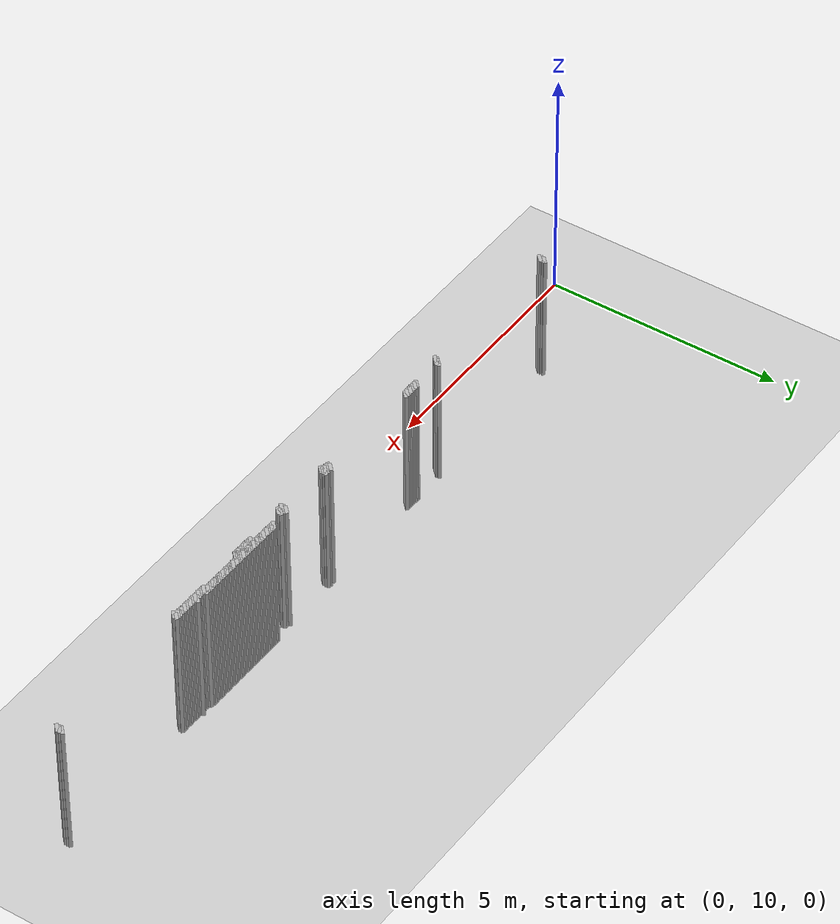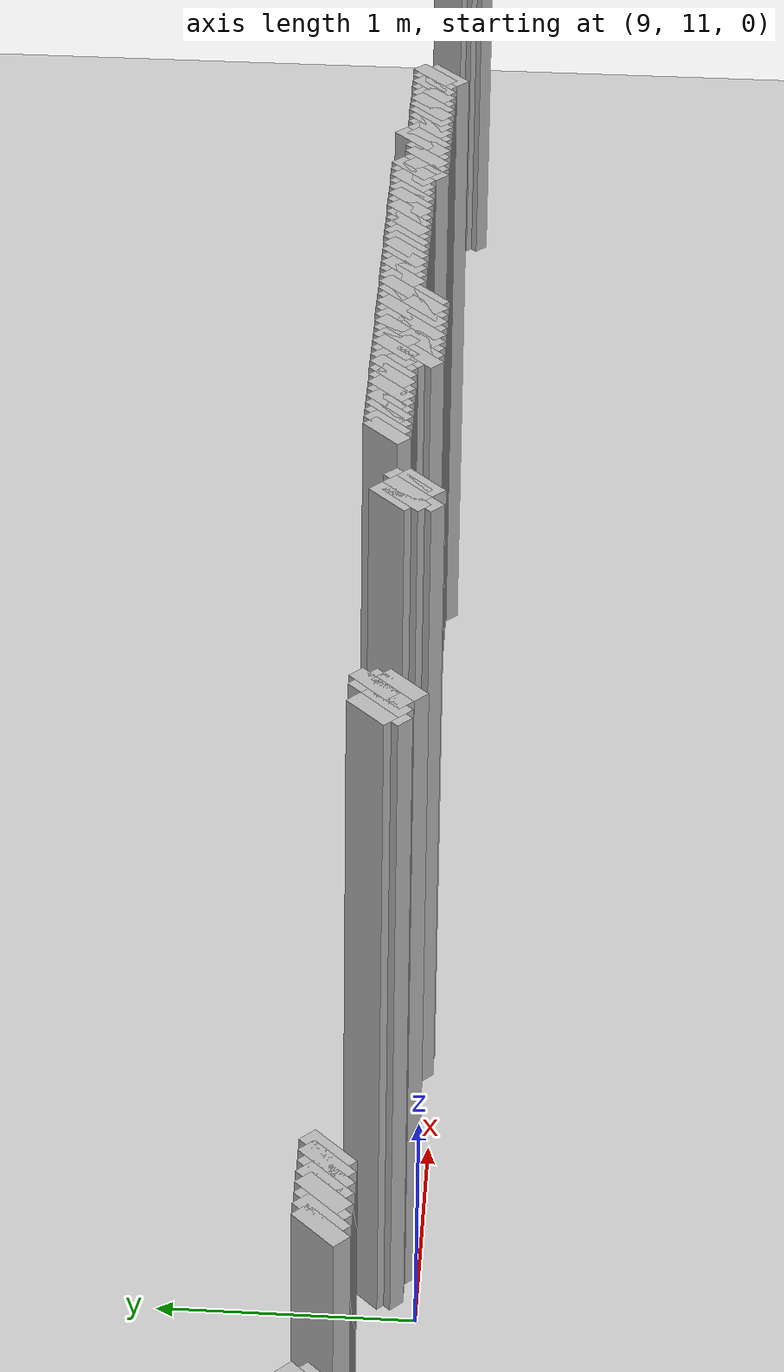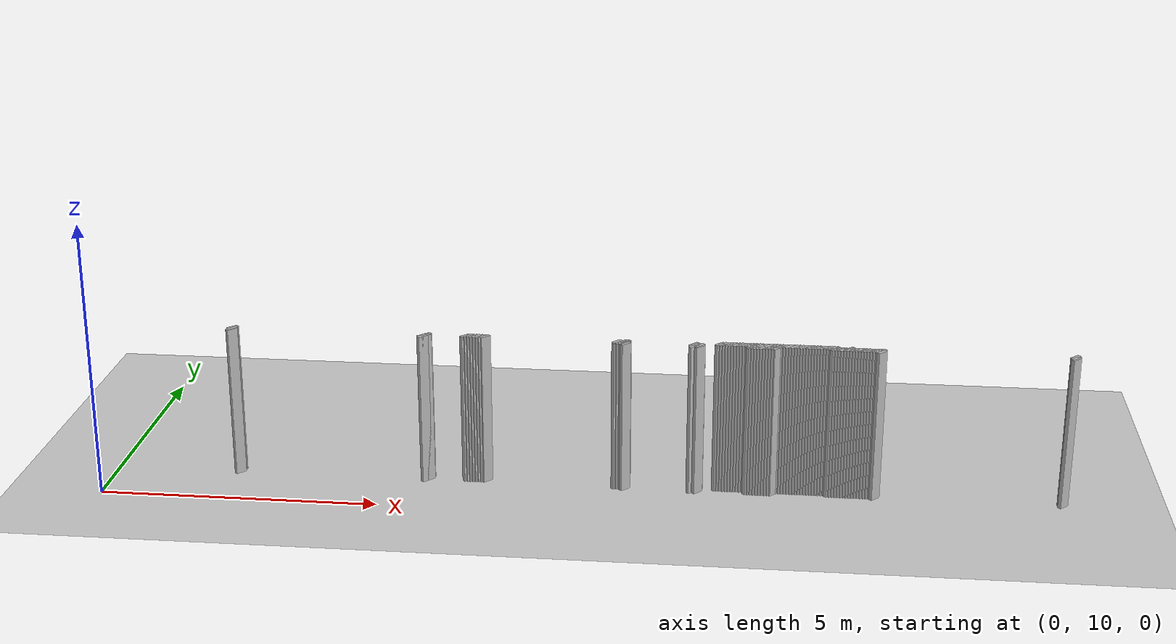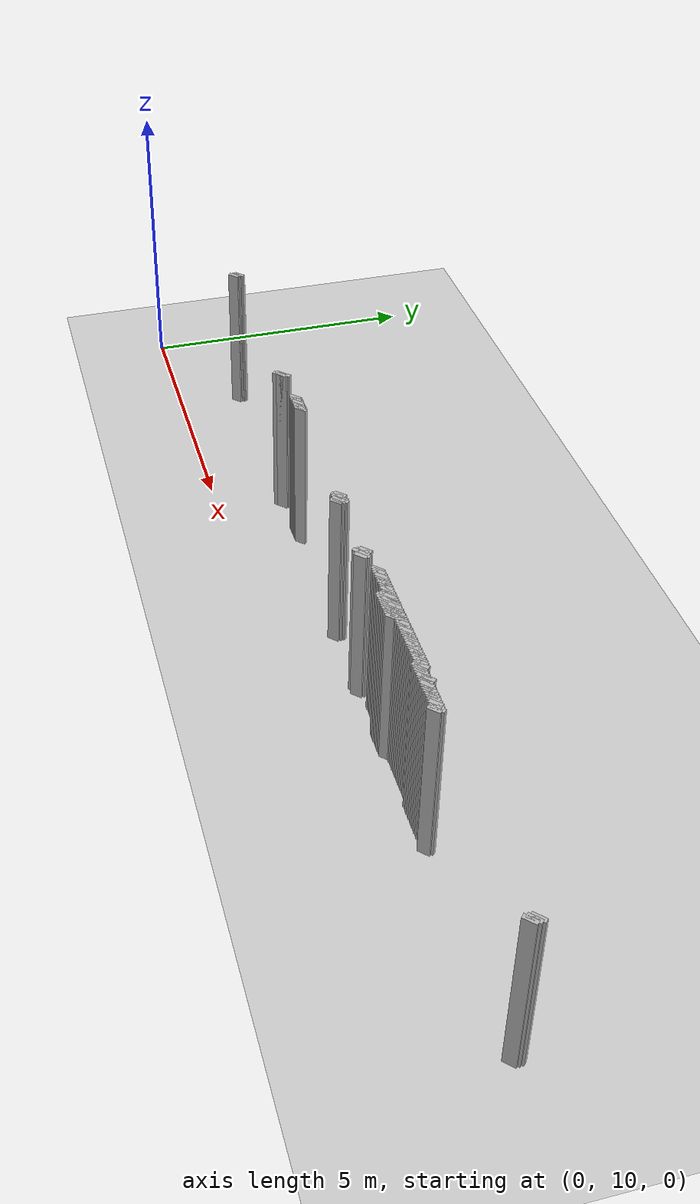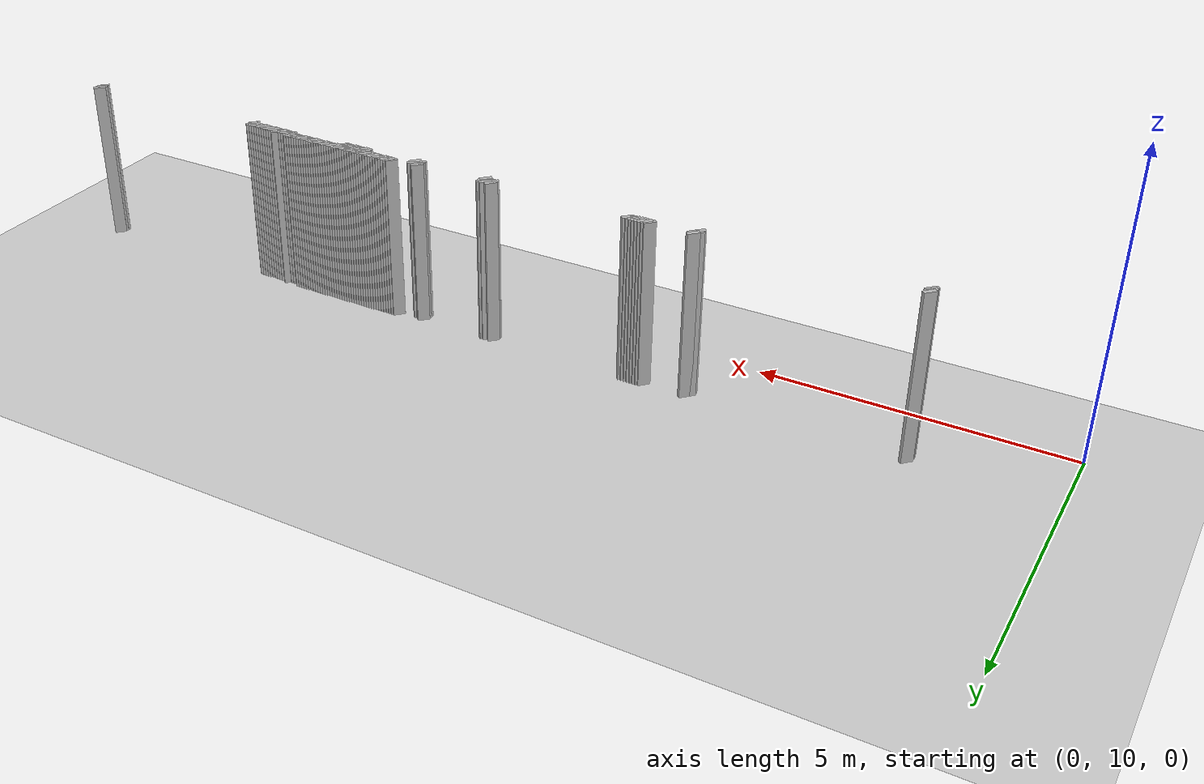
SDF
<sdf version="1.5">
 <world name="default">
  <include><uri>model://ground_plane</uri></include>
  <include><uri>model://sun</uri></include>
  <model name="grey_wall_1269">
   <static>1</static>
   <link name="link">
    <pose>10.950000000000001 11.25  1.4 0 0 -0.7853981633974483</pose>
    <collision name="collision">
     <geometry><box><size>0.07071067811865576 .2  2.8</size></box></geometry>
    </collision>
    <visual name="visual">
     <cast_shadows>0</cast_shadows>
     <geometry><box><size>0.07071067811865576 .2  2.8</size></box></geometry>
    </visual>
   </link>
  </model>
  <model name="grey_wall_1270">
   <static>1</static>
   <link name="link">
    <pose>11.0 11.25  1.4 0 0 -0.7853981633974483</pose>
    <collision name="collision">
     <geometry><box><size>0.07071067811865576 .2  2.8</size></box></geometry>
    </collision>
    <visual name="visual">
     <cast_shadows>0</cast_shadows>
     <geometry><box><size>0.07071067811865576 .2  2.8</size></box></geometry>
    </visual>
   </link>
  </model>
  <model name="grey_wall_1271">
   <static>1</static>
   <link name="link">
    <pose>11.05 11.25  1.4 0 0 -0.7853981633974483</pose>
    <collision name="collision">
     <geometry><box><size>0.07071067811865576 .2  2.8</size></box></geometry>
    </collision>
    <visual name="visual">
     <cast_shadows>0</cast_shadows>
     <geometry><box><size>0.07071067811865576 .2  2.8</size></box></geometry>
    </visual>
   </link>
  </model>
  <model name="grey_wall_1272">
   <static>1</static>
   <link name="link">
    <pose>11.100000000000001 11.25  1.4 0 0 -0.7853981633974483</pose>
    <collision name="collision">
     <geometry><box><size>0.07071067811865576 .2  2.8</size></box></geometry>
    </collision>
    <visual name="visual">
     <cast_shadows>0</cast_shadows>
     <geometry><box><size>0.07071067811865576 .2  2.8</size></box></geometry>
    </visual>
   </link>
  </model>
  <model name="grey_wall_1273">
   <static>1</static>
   <link name="link">
    <pose>11.15 11.25  1.4 0 0 -0.7853981633974483</pose>
    <collision name="collision">
     <geometry><box><size>0.07071067811865576 .2  2.8</size></box></geometry>
    </collision>
    <visual name="visual">
     <cast_shadows>0</cast_shadows>
     <geometry><box><size>0.07071067811865576 .2  2.8</size></box></geometry>
    </visual>
   </link>
  </model>
  <model name="grey_wall_1274">
   <static>1</static>
   <link name="link">
    <pose>11.200000000000001 11.25  1.4 0 0 -0.7853981633974483</pose>
    <collision name="collision">
     <geometry><box><size>0.07071067811865576 .2  2.8</size></box></geometry>
    </collision>
    <visual name="visual">
     <cast_shadows>0</cast_shadows>
     <geometry><box><size>0.07071067811865576 .2  2.8</size></box></geometry>
    </visual>
   </link>
  </model>
  <model name="grey_wall_1275">
   <static>1</static>
   <link name="link">
    <pose>11.25 11.25  1.4 0 0 -0.7853981633974483</pose>
    <collision name="collision">
     <geometry><box><size>0.07071067811865576 .2  2.8</size></box></geometry>
    </collision>
    <visual name="visual">
     <cast_shadows>0</cast_shadows>
     <geometry><box><size>0.07071067811865576 .2  2.8</size></box></geometry>
    </visual>
   </link>
  </model>
  <model name="grey_wall_1276">
   <static>1</static>
   <link name="link">
    <pose>11.3 11.25  1.4 0 0 -0.7853981633974483</pose>
    <collision name="collision">
     <geometry><box><size>0.07071067811865576 .2  2.8</size></box></geometry>
    </collision>
    <visual name="visual">
     <cast_shadows>0</cast_shadows>
     <geometry><box><size>0.07071067811865576 .2  2.8</size></box></geometry>
    </visual>
   </link>
  </model>
  <model name="grey_wall_1277">
   <static>1</static>
   <link name="link">
    <pose>11.350000000000001 11.25  1.4 0 0 -0.7853981633974483</pose>
    <collision name="collision">
     <geometry><box><size>0.07071067811865576 .2  2.8</size></box></geometry>
    </collision>
    <visual name="visual">
     <cast_shadows>0</cast_shadows>
     <geometry><box><size>0.07071067811865576 .2  2.8</size></box></geometry>
    </visual>
   </link>
  </model>
  <model name="grey_wall_1278">
   <static>1</static>
   <link name="link">
    <pose>11.4 11.25  1.4 0 0 -0.7853981633974483</pose>
    <collision name="collision">
     <geometry><box><size>0.07071067811865576 .2  2.8</size></box></geometry>
    </collision>
    <visual name="visual">
     <cast_shadows>0</cast_shadows>
     <geometry><box><size>0.07071067811865576 .2  2.8</size></box></geometry>
    </visual>
   </link>
  </model>
  <model name="grey_wall_1279">
   <static>1</static>
   <link name="link">
    <pose>11.450000000000001 11.25  1.4 0 0 -0.7853981633974483</pose>
    <collision name="collision">
     <geometry><box><size>0.07071067811865576 .2  2.8</size></box></geometry>
    </collision>
    <visual name="visual">
     <cast_shadows>0</cast_shadows>
     <geometry><box><size>0.07071067811865576 .2  2.8</size></box></geometry>
    </visual>
   </link>
  </model>
  <model name="grey_wall_1280">
   <static>1</static>
   <link name="link">
    <pose>11.5 11.25  1.4 0 0 -0.7853981633974483</pose>
    <collision name="collision">
     <geometry><box><size>0.07071067811865576 .2  2.8</size></box></geometry>
    </collision>
    <visual name="visual">
     <cast_shadows>0</cast_shadows>
     <geometry><box><size>0.07071067811865576 .2  2.8</size></box></geometry>
    </visual>
   </link>
  </model>
  <model name="grey_wall_1281">
   <static>1</static>
   <link name="link">
    <pose>11.55 11.25  1.4 0 0 -0.7853981633974483</pose>
    <collision name="collision">
     <geometry><box><size>0.07071067811865576 .2  2.8</size></box></geometry>
    </collision>
    <visual name="visual">
     <cast_shadows>0</cast_shadows>
     <geometry><box><size>0.07071067811865576 .2  2.8</size></box></geometry>
    </visual>
   </link>
  </model>
  <model name="grey_wall_1282">
   <static>1</static>
   <link name="link">
    <pose>11.600000000000001 11.25  1.4 0 0 -0.7853981633974483</pose>
    <collision name="collision">
     <geometry><box><size>0.07071067811865576 .2  2.8</size></box></geometry>
    </collision>
    <visual name="visual">
     <cast_shadows>0</cast_shadows>
     <geometry><box><size>0.07071067811865576 .2  2.8</size></box></geometry>
    </visual>
   </link>
  </model>
  <model name="grey_wall_1283">
   <static>1</static>
   <link name="link">
    <pose>11.65 11.25  1.4 0 0 -0.7853981633974483</pose>
    <collision name="collision">
     <geometry><box><size>0.07071067811865576 .2  2.8</size></box></geometry>
    </collision>
    <visual name="visual">
     <cast_shadows>0</cast_shadows>
     <geometry><box><size>0.07071067811865576 .2  2.8</size></box></geometry>
    </visual>
   </link>
  </model>
  <model name="grey_wall_1284">
   <static>1</static>
   <link name="link">
    <pose>11.700000000000001 11.25  1.4 0 0 -0.7853981633974483</pose>
    <collision name="collision">
     <geometry><box><size>0.07071067811865576 .2  2.8</size></box></geometry>
    </collision>
    <visual name="visual">
     <cast_shadows>0</cast_shadows>
     <geometry><box><size>0.07071067811865576 .2  2.8</size></box></geometry>
    </visual>
   </link>
  </model>
  <model name="grey_wall_1285">
   <static>1</static>
   <link name="link">
    <pose>11.75 11.25  1.4 0 0 -0.7853981633974483</pose>
    <collision name="collision">
     <geometry><box><size>0.07071067811865576 .2  2.8</size></box></geometry>
    </collision>
    <visual name="visual">
     <cast_shadows>0</cast_shadows>
     <geometry><box><size>0.07071067811865576 .2  2.8</size></box></geometry>
    </visual>
   </link>
  </model>
  <model name="grey_wall_1286">
   <static>1</static>
   <link name="link">
    <pose>11.8 11.25  1.4 0 0 -0.7853981633974483</pose>
    <collision name="collision">
     <geometry><box><size>0.07071067811865576 .2  2.8</size></box></geometry>
    </collision>
    <visual name="visual">
     <cast_shadows>0</cast_shadows>
     <geometry><box><size>0.07071067811865576 .2  2.8</size></box></geometry>
    </visual>
   </link>
  </model>
  <model name="grey_wall_1287">
   <static>1</static>
   <link name="link">
    <pose>11.850000000000001 11.25  1.4 0 0 -0.7853981633974483</pose>
    <collision name="collision">
     <geometry><box><size>0.07071067811865576 .2  2.8</size></box></geometry>
    </collision>
    <visual name="visual">
     <cast_shadows>0</cast_shadows>
     <geometry><box><size>0.07071067811865576 .2  2.8</size></box></geometry>
    </visual>
   </link>
  </model>
  <model name="grey_wall_1288">
   <static>1</static>
   <link name="link">
    <pose>11.9 11.25  1.4 0 0 -0.7853981633974483</pose>
    <collision name="collision">
     <geometry><box><size>0.07071067811865576 .2  2.8</size></box></geometry>
    </collision>
    <visual name="visual">
     <cast_shadows>0</cast_shadows>
     <geometry><box><size>0.07071067811865576 .2  2.8</size></box></geometry>
    </visual>
   </link>
  </model>
  <model name="grey_wall_1289">
   <static>1</static>
   <link name="link">
    <pose>11.950000000000001 11.25  1.4 0 0 -0.7853981633974483</pose>
    <collision name="collision">
     <geometry><box><size>0.07071067811865576 .2  2.8</size></box></geometry>
    </collision>
    <visual name="visual">
     <cast_shadows>0</cast_shadows>
     <geometry><box><size>0.07071067811865576 .2  2.8</size></box></geometry>
    </visual>
   </link>
  </model>
  <model name="grey_wall_1290">
   <static>1</static>
   <link name="link">
    <pose>12.0 11.25  1.4 0 0 -0.7853981633974483</pose>
    <collision name="collision">
     <geometry><box><size>0.07071067811865576 .2  2.8</size></box></geometry>
    </collision>
    <visual name="visual">
     <cast_shadows>0</cast_shadows>
     <geometry><box><size>0.07071067811865576 .2  2.8</size></box></geometry>
    </visual>
   </link>
  </model>
  <model name="grey_wall_1291">
   <static>1</static>
   <link name="link">
    <pose>12.05 11.25  1.4 0 0 -0.7853981633974483</pose>
    <collision name="collision">
     <geometry><box><size>0.07071067811865576 .2  2.8</size></box></geometry>
    </collision>
    <visual name="visual">
     <cast_shadows>0</cast_shadows>
     <geometry><box><size>0.07071067811865576 .2  2.8</size></box></geometry>
    </visual>
   </link>
  </model>
  <model name="grey_wall_1292">
   <static>1</static>
   <link name="link">
    <pose>12.100000000000001 11.25  1.4 0 0 -0.7853981633974483</pose>
    <collision name="collision">
     <geometry><box><size>0.07071067811865576 .2  2.8</size></box></geometry>
    </collision>
    <visual name="visual">
     <cast_shadows>0</cast_shadows>
     <geometry><box><size>0.07071067811865576 .2  2.8</size></box></geometry>
    </visual>
   </link>
  </model>
  <model name="grey_wall_1293">
   <static>1</static>
   <link name="link">
    <pose>12.15 11.25  1.4 0 0 -0.7853981633974483</pose>
    <collision name="collision">
     <geometry><box><size>0.07071067811865576 .2  2.8</size></box></geometry>
    </collision>
    <visual name="visual">
     <cast_shadows>0</cast_shadows>
     <geometry><box><size>0.07071067811865576 .2  2.8</size></box></geometry>
    </visual>
   </link>
  </model>
  <model name="grey_wall_1294">
   <static>1</static>
   <link name="link">
    <pose>12.200000000000001 11.25  1.4 0 0 -0.7853981633974483</pose>
    <collision name="collision">
     <geometry><box><size>0.07071067811865576 .2  2.8</size></box></geometry>
    </collision>
    <visual name="visual">
     <cast_shadows>0</cast_shadows>
     <geometry><box><size>0.07071067811865576 .2  2.8</size></box></geometry>
    </visual>
   </link>
  </model>
  <model name="grey_wall_1295">
   <static>1</static>
   <link name="link">
    <pose>12.25 11.25  1.4 0 0 -0.7853981633974483</pose>
    <collision name="collision">
     <geometry><box><size>0.07071067811865576 .2  2.8</size></box></geometry>
    </collision>
    <visual name="visual">
     <cast_shadows>0</cast_shadows>
     <geometry><box><size>0.07071067811865576 .2  2.8</size></box></geometry>
    </visual>
   </link>
  </model>
  <model name="grey_wall_1296">
   <static>1</static>
   <link name="link">
    <pose>12.3 11.25  1.4 0 0 -0.7853981633974483</pose>
    <collision name="collision">
     <geometry><box><size>0.07071067811865576 .2  2.8</size></box></geometry>
    </collision>
    <visual name="visual">
     <cast_shadows>0</cast_shadows>
     <geometry><box><size>0.07071067811865576 .2  2.8</size></box></geometry>
    </visual>
   </link>
  </model>
  <model name="grey_wall_1297">
   <static>1</static>
   <link name="link">
    <pose>12.350000000000001 11.25  1.4 0 0 -0.7853981633974483</pose>
    <collision name="collision">
     <geometry><box><size>0.07071067811865576 .2  2.8</size></box></geometry>
    </collision>
    <visual name="visual">
     <cast_shadows>0</cast_shadows>
     <geometry><box><size>0.07071067811865576 .2  2.8</size></box></geometry>
    </visual>
   </link>
  </model>
  <model name="grey_wall_1298">
   <static>1</static>
   <link name="link">
    <pose>12.4 11.25  1.4 0 0 -0.7853981633974483</pose>
    <collision name="collision">
     <geometry><box><size>0.07071067811865576 .2  2.8</size></box></geometry>
    </collision>
    <visual name="visual">
     <cast_shadows>0</cast_shadows>
     <geometry><box><size>0.07071067811865576 .2  2.8</size></box></geometry>
    </visual>
   </link>
  </model>
  <model name="grey_wall_1299">
   <static>1</static>
   <link name="link">
    <pose>12.450000000000001 11.25  1.4 0 0 -0.7853981633974483</pose>
    <collision name="collision">
     <geometry><box><size>0.07071067811865576 .2  2.8</size></box></geometry>
    </collision>
    <visual name="visual">
     <cast_shadows>0</cast_shadows>
     <geometry><box><size>0.07071067811865576 .2  2.8</size></box></geometry>
    </visual>
   </link>
  </model>
  <model name="grey_wall_1300">
   <static>1</static>
   <link name="link">
    <pose>12.5 11.25  1.4 0 0 -0.7853981633974483</pose>
    <collision name="collision">
     <geometry><box><size>0.07071067811865576 .2  2.8</size></box></geometry>
    </collision>
    <visual name="visual">
     <cast_shadows>0</cast_shadows>
     <geometry><box><size>0.07071067811865576 .2  2.8</size></box></geometry>
    </visual>
   </link>
  </model>
  <model name="grey_wall_1301">
   <static>1</static>
   <link name="link">
    <pose>12.55 11.25  1.4 0 0 -0.7853981633974483</pose>
    <collision name="collision">
     <geometry><box><size>0.07071067811865576 .2  2.8</size></box></geometry>
    </collision>
    <visual name="visual">
     <cast_shadows>0</cast_shadows>
     <geometry><box><size>0.07071067811865576 .2  2.8</size></box></geometry>
    </visual>
   </link>
  </model>
  <model name="grey_wall_1302">
   <static>1</static>
   <link name="link">
    <pose>12.600000000000001 11.25  1.4 0 0 -0.7853981633974483</pose>
    <collision name="collision">
     <geometry><box><size>0.07071067811865576 .2  2.8</size></box></geometry>
    </collision>
    <visual name="visual">
     <cast_shadows>0</cast_shadows>
     <geometry><box><size>0.07071067811865576 .2  2.8</size></box></geometry>
    </visual>
   </link>
  </model>
  <model name="grey_wall_1303">
   <static>1</static>
   <link name="link">
    <pose>12.65 11.25  1.4 0 0 -0.7853981633974483</pose>
    <collision name="collision">
     <geometry><box><size>0.07071067811865576 .2  2.8</size></box></geometry>
    </collision>
    <visual name="visual">
     <cast_shadows>0</cast_shadows>
     <geometry><box><size>0.07071067811865576 .2  2.8</size></box></geometry>
    </visual>
   </link>
  </model>
  <model name="grey_wall_1304">
   <static>1</static>
   <link name="link">
    <pose>12.700000000000001 11.25  1.4 0 0 -0.7853981633974483</pose>
    <collision name="collision">
     <geometry><box><size>0.07071067811865576 .2  2.8</size></box></geometry>
    </collision>
    <visual name="visual">
     <cast_shadows>0</cast_shadows>
     <geometry><box><size>0.07071067811865576 .2  2.8</size></box></geometry>
    </visual>
   </link>
  </model>
  <model name="grey_wall_1305">
   <static>1</static>
   <link name="link">
    <pose>12.75 11.25  1.4 0 0 -0.7853981633974483</pose>
    <collision name="collision">
     <geometry><box><size>0.07071067811865576 .2  2.8</size></box></geometry>
    </collision>
    <visual name="visual">
     <cast_shadows>0</cast_shadows>
     <geometry><box><size>0.07071067811865576 .2  2.8</size></box></geometry>
    </visual>
   </link>
  </model>
  <model name="grey_wall_1306">
   <static>1</static>
   <link name="link">
    <pose>12.8 11.25  1.4 0 0 -0.7853981633974483</pose>
    <collision name="collision">
     <geometry><box><size>0.07071067811865576 .2  2.8</size></box></geometry>
    </collision>
    <visual name="visual">
     <cast_shadows>0</cast_shadows>
     <geometry><box><size>0.07071067811865576 .2  2.8</size></box></geometry>
    </visual>
   </link>
  </model>
  <model name="grey_wall_1307">
   <static>1</static>
   <link name="link">
    <pose>12.850000000000001 11.25  1.4 0 0 -0.7853981633974483</pose>
    <collision name="collision">
     <geometry><box><size>0.07071067811865576 .2  2.8</size></box></geometry>
    </collision>
    <visual name="visual">
     <cast_shadows>0</cast_shadows>
     <geometry><box><size>0.07071067811865576 .2  2.8</size></box></geometry>
    </visual>
   </link>
  </model>
  <model name="grey_wall_1308">
   <static>1</static>
   <link name="link">
    <pose>12.9 11.25  1.4 0 0 -0.7853981633974483</pose>
    <collision name="collision">
     <geometry><box><size>0.07071067811865576 .2  2.8</size></box></geometry>
    </collision>
    <visual name="visual">
     <cast_shadows>0</cast_shadows>
     <geometry><box><size>0.07071067811865576 .2  2.8</size></box></geometry>
    </visual>
   </link>
  </model>
  <model name="grey_wall_1309">
   <static>1</static>
   <link name="link">
    <pose>12.950000000000001 11.25  1.4 0 0 -0.7853981633974483</pose>
    <collision name="collision">
     <geometry><box><size>0.07071067811865576 .2  2.8</size></box></geometry>
    </collision>
    <visual name="visual">
     <cast_shadows>0</cast_shadows>
     <geometry><box><size>0.07071067811865576 .2  2.8</size></box></geometry>
    </visual>
   </link>
  </model>
  <model name="grey_wall_1310">
   <static>1</static>
   <link name="link">
    <pose>13.200000000000001 11.25  1.4 0 0 -0.7853981633974483</pose>
    <collision name="collision">
     <geometry><box><size>0.07071067811865576 .2  2.8</size></box></geometry>
    </collision>
    <visual name="visual">
     <cast_shadows>0</cast_shadows>
     <geometry><box><size>0.07071067811865576 .2  2.8</size></box></geometry>
    </visual>
   </link>
  </model>
  <model name="grey_wall_1311">
   <static>1</static>
   <link name="link">
    <pose>17.05 11.25  1.4 0 0 -0.7853981633974838</pose>
    <collision name="collision">
     <geometry><box><size>0.07071067811865325 .2  2.8</size></box></geometry>
    </collision>
    <visual name="visual">
     <cast_shadows>0</cast_shadows>
     <geometry><box><size>0.07071067811865325 .2  2.8</size></box></geometry>
    </visual>
   </link>
  </model>
  <model name="grey_wall_1312">
   <static>1</static>
   <link name="link">
    <pose>2.25 11.200000000000001  1.4 0 0 -0.7853981633974572</pose>
    <collision name="collision">
     <geometry><box><size>0.07071067811865513 .2  2.8</size></box></geometry>
    </collision>
    <visual name="visual">
     <cast_shadows>0</cast_shadows>
     <geometry><box><size>0.07071067811865513 .2  2.8</size></box></geometry>
    </visual>
   </link>
  </model>
  <model name="grey_wall_1313">
   <static>1</static>
   <link name="link">
    <pose>5.75 11.200000000000001  1.4 0 0 -0.7853981633974483</pose>
    <collision name="collision">
     <geometry><box><size>0.07071067811865576 .2  2.8</size></box></geometry>
    </collision>
    <visual name="visual">
     <cast_shadows>0</cast_shadows>
     <geometry><box><size>0.07071067811865576 .2  2.8</size></box></geometry>
    </visual>
   </link>
  </model>
  <model name="grey_wall_1314">
   <static>1</static>
   <link name="link">
    <pose>6.45 11.200000000000001  1.4 0 0 -0.7853981633974483</pose>
    <collision name="collision">
     <geometry><box><size>0.07071067811865576 .2  2.8</size></box></geometry>
    </collision>
    <visual name="visual">
     <cast_shadows>0</cast_shadows>
     <geometry><box><size>0.07071067811865576 .2  2.8</size></box></geometry>
    </visual>
   </link>
  </model>
  <model name="grey_wall_1315">
   <static>1</static>
   <link name="link">
    <pose>6.5 11.200000000000001  1.4 0 0 -0.7853981633974483</pose>
    <collision name="collision">
     <geometry><box><size>0.07071067811865576 .2  2.8</size></box></geometry>
    </collision>
    <visual name="visual">
     <cast_shadows>0</cast_shadows>
     <geometry><box><size>0.07071067811865576 .2  2.8</size></box></geometry>
    </visual>
   </link>
  </model>
  <model name="grey_wall_1316">
   <static>1</static>
   <link name="link">
    <pose>6.550000000000001 11.200000000000001  1.4 0 0 -0.7853981633974483</pose>
    <collision name="collision">
     <geometry><box><size>0.07071067811865576 .2  2.8</size></box></geometry>
    </collision>
    <visual name="visual">
     <cast_shadows>0</cast_shadows>
     <geometry><box><size>0.07071067811865576 .2  2.8</size></box></geometry>
    </visual>
   </link>
  </model>
  <model name="grey_wall_1317">
   <static>1</static>
   <link name="link">
    <pose>6.6000000000000005 11.200000000000001  1.4 0 0 -0.7853981633974483</pose>
    <collision name="collision">
     <geometry><box><size>0.07071067811865576 .2  2.8</size></box></geometry>
    </collision>
    <visual name="visual">
     <cast_shadows>0</cast_shadows>
     <geometry><box><size>0.07071067811865576 .2  2.8</size></box></geometry>
    </visual>
   </link>
  </model>
  <model name="grey_wall_1318">
   <static>1</static>
   <link name="link">
    <pose>6.65 11.200000000000001  1.4 0 0 -0.7853981633974483</pose>
    <collision name="collision">
     <geometry><box><size>0.07071067811865576 .2  2.8</size></box></geometry>
    </collision>
    <visual name="visual">
     <cast_shadows>0</cast_shadows>
     <geometry><box><size>0.07071067811865576 .2  2.8</size></box></geometry>
    </visual>
   </link>
  </model>
  <model name="grey_wall_1319">
   <static>1</static>
   <link name="link">
    <pose>6.7 11.200000000000001  1.4 0 0 -0.7853981633974483</pose>
    <collision name="collision">
     <geometry><box><size>0.07071067811865576 .2  2.8</size></box></geometry>
    </collision>
    <visual name="visual">
     <cast_shadows>0</cast_shadows>
     <geometry><box><size>0.07071067811865576 .2  2.8</size></box></geometry>
    </visual>
   </link>
  </model>
  <model name="grey_wall_1320">
   <static>1</static>
   <link name="link">
    <pose>6.75 11.200000000000001  1.4 0 0 -0.7853981633974483</pose>
    <collision name="collision">
     <geometry><box><size>0.07071067811865576 .2  2.8</size></box></geometry>
    </collision>
    <visual name="visual">
     <cast_shadows>0</cast_shadows>
     <geometry><box><size>0.07071067811865576 .2  2.8</size></box></geometry>
    </visual>
   </link>
  </model>
  <model name="grey_wall_1321">
   <static>1</static>
   <link name="link">
    <pose>6.800000000000001 11.200000000000001  1.4 0 0 -0.7853981633974483</pose>
    <collision name="collision">
     <geometry><box><size>0.07071067811865576 .2  2.8</size></box></geometry>
    </collision>
    <visual name="visual">
     <cast_shadows>0</cast_shadows>
     <geometry><box><size>0.07071067811865576 .2  2.8</size></box></geometry>
    </visual>
   </link>
  </model>
  <model name="grey_wall_1322">
   <static>1</static>
   <link name="link">
    <pose>9.15 11.200000000000001  1.4 0 0 -0.7853981633974483</pose>
    <collision name="collision">
     <geometry><box><size>0.07071067811865576 .2  2.8</size></box></geometry>
    </collision>
    <visual name="visual">
     <cast_shadows>0</cast_shadows>
     <geometry><box><size>0.07071067811865576 .2  2.8</size></box></geometry>
    </visual>
   </link>
  </model>
  <model name="grey_wall_1323">
   <static>1</static>
   <link name="link">
    <pose>9.25 11.200000000000001  1.4 0 0 -0.7853981633974483</pose>
    <collision name="collision">
     <geometry><box><size>0.07071067811865576 .2  2.8</size></box></geometry>
    </collision>
    <visual name="visual">
     <cast_shadows>0</cast_shadows>
     <geometry><box><size>0.07071067811865576 .2  2.8</size></box></geometry>
    </visual>
   </link>
  </model>
  <model name="grey_wall_1324">
   <static>1</static>
   <link name="link">
    <pose>9.3 11.200000000000001  1.4 0 0 -0.7853981633974483</pose>
    <collision name="collision">
     <geometry><box><size>0.07071067811865576 .2  2.8</size></box></geometry>
    </collision>
    <visual name="visual">
     <cast_shadows>0</cast_shadows>
     <geometry><box><size>0.07071067811865576 .2  2.8</size></box></geometry>
    </visual>
   </link>
  </model>
  <model name="grey_wall_1325">
   <static>1</static>
   <link name="link">
    <pose>10.5 11.200000000000001  1.4 0 0 -0.7853981633974483</pose>
    <collision name="collision">
     <geometry><box><size>0.07071067811865576 .2  2.8</size></box></geometry>
    </collision>
    <visual name="visual">
     <cast_shadows>0</cast_shadows>
     <geometry><box><size>0.07071067811865576 .2  2.8</size></box></geometry>
    </visual>
   </link>
  </model>
  <model name="grey_wall_1326">
   <static>1</static>
   <link name="link">
    <pose>11.5 11.200000000000001  1.4 0 0 -0.7853981633974483</pose>
    <collision name="collision">
     <geometry><box><size>0.07071067811865576 .2  2.8</size></box></geometry>
    </collision>
    <visual name="visual">
     <cast_shadows>0</cast_shadows>
     <geometry><box><size>0.07071067811865576 .2  2.8</size></box></geometry>
    </visual>
   </link>
  </model>
  <model name="grey_wall_1327">
   <static>1</static>
   <link name="link">
    <pose>11.850000000000001 11.200000000000001  1.4 0 0 -0.7853981633974483</pose>
    <collision name="collision">
     <geometry><box><size>0.07071067811865576 .2  2.8</size></box></geometry>
    </collision>
    <visual name="visual">
     <cast_shadows>0</cast_shadows>
     <geometry><box><size>0.07071067811865576 .2  2.8</size></box></geometry>
    </visual>
   </link>
  </model>
  <model name="grey_wall_1328">
   <static>1</static>
   <link name="link">
    <pose>11.950000000000001 11.200000000000001  1.4 0 0 -0.7853981633974483</pose>
    <collision name="collision">
     <geometry><box><size>0.07071067811865576 .2  2.8</size></box></geometry>
    </collision>
    <visual name="visual">
     <cast_shadows>0</cast_shadows>
     <geometry><box><size>0.07071067811865576 .2  2.8</size></box></geometry>
    </visual>
   </link>
  </model>
  <model name="grey_wall_1329">
   <static>1</static>
   <link name="link">
    <pose>12.950000000000001 11.200000000000001  1.4 0 0 -0.7853981633974483</pose>
    <collision name="collision">
     <geometry><box><size>0.07071067811865576 .2  2.8</size></box></geometry>
    </collision>
    <visual name="visual">
     <cast_shadows>0</cast_shadows>
     <geometry><box><size>0.07071067811865576 .2  2.8</size></box></geometry>
    </visual>
   </link>
  </model>
  <model name="grey_wall_1330">
   <static>1</static>
   <link name="link">
    <pose>13.0 11.200000000000001  1.4 0 0 -0.7853981633974483</pose>
    <collision name="collision">
     <geometry><box><size>0.07071067811865576 .2  2.8</size></box></geometry>
    </collision>
    <visual name="visual">
     <cast_shadows>0</cast_shadows>
     <geometry><box><size>0.07071067811865576 .2  2.8</size></box></geometry>
    </visual>
   </link>
  </model>
  <model name="grey_wall_1331">
   <static>1</static>
   <link name="link">
    <pose>13.05 11.200000000000001  1.4 0 0 -0.7853981633974483</pose>
    <collision name="collision">
     <geometry><box><size>0.07071067811865576 .2  2.8</size></box></geometry>
    </collision>
    <visual name="visual">
     <cast_shadows>0</cast_shadows>
     <geometry><box><size>0.07071067811865576 .2  2.8</size></box></geometry>
    </visual>
   </link>
  </model>
  <model name="grey_wall_1332">
   <static>1</static>
   <link name="link">
    <pose>13.100000000000001 11.200000000000001  1.4 0 0 -0.7853981633974483</pose>
    <collision name="collision">
     <geometry><box><size>0.07071067811865576 .2  2.8</size></box></geometry>
    </collision>
    <visual name="visual">
     <cast_shadows>0</cast_shadows>
     <geometry><box><size>0.07071067811865576 .2  2.8</size></box></geometry>
    </visual>
   </link>
  </model>
  <model name="grey_wall_1333">
   <static>1</static>
   <link name="link">
    <pose>13.15 11.200000000000001  1.4 0 0 -0.7853981633974483</pose>
    <collision name="collision">
     <geometry><box><size>0.07071067811865576 .2  2.8</size></box></geometry>
    </collision>
    <visual name="visual">
     <cast_shadows>0</cast_shadows>
     <geometry><box><size>0.07071067811865576 .2  2.8</size></box></geometry>
    </visual>
   </link>
  </model>
  <model name="grey_wall_1334">
   <static>1</static>
   <link name="link">
    <pose>13.200000000000001 11.200000000000001  1.4 0 0 -0.7853981633974483</pose>
    <collision name="collision">
     <geometry><box><size>0.07071067811865576 .2  2.8</size></box></geometry>
    </collision>
    <visual name="visual">
     <cast_shadows>0</cast_shadows>
     <geometry><box><size>0.07071067811865576 .2  2.8</size></box></geometry>
    </visual>
   </link>
  </model>
  <model name="grey_wall_1335">
   <static>1</static>
   <link name="link">
    <pose>13.25 11.200000000000001  1.4 0 0 -0.7853981633974483</pose>
    <collision name="collision">
     <geometry><box><size>0.07071067811865576 .2  2.8</size></box></geometry>
    </collision>
    <visual name="visual">
     <cast_shadows>0</cast_shadows>
     <geometry><box><size>0.07071067811865576 .2  2.8</size></box></geometry>
    </visual>
   </link>
  </model>
  <model name="grey_wall_1336">
   <static>1</static>
   <link name="link">
    <pose>13.3 11.200000000000001  1.4 0 0 -0.7853981633974483</pose>
    <collision name="collision">
     <geometry><box><size>0.07071067811865576 .2  2.8</size></box></geometry>
    </collision>
    <visual name="visual">
     <cast_shadows>0</cast_shadows>
     <geometry><box><size>0.07071067811865576 .2  2.8</size></box></geometry>
    </visual>
   </link>
  </model>
  <model name="grey_wall_1337">
   <static>1</static>
   <link name="link">
    <pose>13.350000000000001 11.200000000000001  1.4 0 0 -0.7853981633974483</pose>
    <collision name="collision">
     <geometry><box><size>0.07071067811865576 .2  2.8</size></box></geometry>
    </collision>
    <visual name="visual">
     <cast_shadows>0</cast_shadows>
     <geometry><box><size>0.07071067811865576 .2  2.8</size></box></geometry>
    </visual>
   </link>
  </model>
  <model name="grey_wall_1338">
   <static>1</static>
   <link name="link">
    <pose>13.4 11.200000000000001  1.4 0 0 -0.7853981633974483</pose>
    <collision name="collision">
     <geometry><box><size>0.07071067811865576 .2  2.8</size></box></geometry>
    </collision>
    <visual name="visual">
     <cast_shadows>0</cast_shadows>
     <geometry><box><size>0.07071067811865576 .2  2.8</size></box></geometry>
    </visual>
   </link>
  </model>
  <model name="grey_wall_1339">
   <static>1</static>
   <link name="link">
    <pose>13.450000000000001 11.200000000000001  1.4 0 0 -0.7853981633974483</pose>
    <collision name="collision">
     <geometry><box><size>0.07071067811865576 .2  2.8</size></box></geometry>
    </collision>
    <visual name="visual">
     <cast_shadows>0</cast_shadows>
     <geometry><box><size>0.07071067811865576 .2  2.8</size></box></geometry>
    </visual>
   </link>
  </model>
  <model name="grey_wall_1340">
   <static>1</static>
   <link name="link">
    <pose>13.5 11.200000000000001  1.4 0 0 -0.7853981633974483</pose>
    <collision name="collision">
     <geometry><box><size>0.07071067811865576 .2  2.8</size></box></geometry>
    </collision>
    <visual name="visual">
     <cast_shadows>0</cast_shadows>
     <geometry><box><size>0.07071067811865576 .2  2.8</size></box></geometry>
    </visual>
   </link>
  </model>
  <model name="grey_wall_1341">
   <static>1</static>
   <link name="link">
    <pose>13.55 11.200000000000001  1.4 0 0 -0.7853981633974483</pose>
    <collision name="collision">
     <geometry><box><size>0.07071067811865576 .2  2.8</size></box></geometry>
    </collision>
    <visual name="visual">
     <cast_shadows>0</cast_shadows>
     <geometry><box><size>0.07071067811865576 .2  2.8</size></box></geometry>
    </visual>
   </link>
  </model>
  <model name="grey_wall_1342">
   <static>1</static>
   <link name="link">
    <pose>13.600000000000001 11.200000000000001  1.4 0 0 -0.7853981633974483</pose>
    <collision name="collision">
     <geometry><box><size>0.07071067811865576 .2  2.8</size></box></geometry>
    </collision>
    <visual name="visual">
     <cast_shadows>0</cast_shadows>
     <geometry><box><size>0.07071067811865576 .2  2.8</size></box></geometry>
    </visual>
   </link>
  </model>
  <model name="grey_wall_1343">
   <static>1</static>
   <link name="link">
    <pose>13.65 11.200000000000001  1.4 0 0 -0.7853981633974483</pose>
    <collision name="collision">
     <geometry><box><size>0.07071067811865576 .2  2.8</size></box></geometry>
    </collision>
    <visual name="visual">
     <cast_shadows>0</cast_shadows>
     <geometry><box><size>0.07071067811865576 .2  2.8</size></box></geometry>
    </visual>
   </link>
  </model>
  <model name="grey_wall_1344">
   <static>1</static>
   <link name="link">
    <pose>13.700000000000001 11.200000000000001  1.4 0 0 -0.7853981633974483</pose>
    <collision name="collision">
     <geometry><box><size>0.07071067811865576 .2  2.8</size></box></geometry>
    </collision>
    <visual name="visual">
     <cast_shadows>0</cast_shadows>
     <geometry><box><size>0.07071067811865576 .2  2.8</size></box></geometry>
    </visual>
   </link>
  </model>
  <model name="grey_wall_1345">
   <static>1</static>
   <link name="link">
    <pose>13.75 11.200000000000001  1.4 0 0 -0.7853981633974483</pose>
    <collision name="collision">
     <geometry><box><size>0.07071067811865576 .2  2.8</size></box></geometry>
    </collision>
    <visual name="visual">
     <cast_shadows>0</cast_shadows>
     <geometry><box><size>0.07071067811865576 .2  2.8</size></box></geometry>
    </visual>
   </link>
  </model>
  <model name="grey_wall_1346">
   <static>1</static>
   <link name="link">
    <pose>17.05 11.200000000000001  1.4 0 0 -0.7853981633974838</pose>
    <collision name="collision">
     <geometry><box><size>0.07071067811865325 .2  2.8</size></box></geometry>
    </collision>
    <visual name="visual">
     <cast_shadows>0</cast_shadows>
     <geometry><box><size>0.07071067811865325 .2  2.8</size></box></geometry>
    </visual>
   </link>
  </model>
  <model name="grey_wall_1347">
   <static>1</static>
   <link name="link">
    <pose>2.25 11.15  1.4 0 0 -0.7853981633974572</pose>
    <collision name="collision">
     <geometry><box><size>0.07071067811865513 .2  2.8</size></box></geometry>
    </collision>
    <visual name="visual">
     <cast_shadows>0</cast_shadows>
     <geometry><box><size>0.07071067811865513 .2  2.8</size></box></geometry>
    </visual>
   </link>
  </model>
  <model name="grey_wall_1348">
   <static>1</static>
   <link name="link">
    <pose>5.7 11.15  1.4 0 0 -0.7853981633974483</pose>
    <collision name="collision">
     <geometry><box><size>0.07071067811865576 .2  2.8</size></box></geometry>
    </collision>
    <visual name="visual">
     <cast_shadows>0</cast_shadows>
     <geometry><box><size>0.07071067811865576 .2  2.8</size></box></geometry>
    </visual>
   </link>
  </model>
  <model name="grey_wall_1349">
   <static>1</static>
   <link name="link">
    <pose>5.75 11.15  1.4 0 0 -0.7853981633974483</pose>
    <collision name="collision">
     <geometry><box><size>0.07071067811865576 .2  2.8</size></box></geometry>
    </collision>
    <visual name="visual">
     <cast_shadows>0</cast_shadows>
     <geometry><box><size>0.07071067811865576 .2  2.8</size></box></geometry>
    </visual>
   </link>
  </model>
  <model name="grey_wall_1350">
   <static>1</static>
   <link name="link">
    <pose>9.15 11.15  1.4 0 0 -0.7853981633974483</pose>
    <collision name="collision">
     <geometry><box><size>0.07071067811865576 .2  2.8</size></box></geometry>
    </collision>
    <visual name="visual">
     <cast_shadows>0</cast_shadows>
     <geometry><box><size>0.07071067811865576 .2  2.8</size></box></geometry>
    </visual>
   </link>
  </model>
  <model name="grey_wall_1351">
   <static>1</static>
   <link name="link">
    <pose>9.200000000000001 11.15  1.4 0 0 -0.7853981633974483</pose>
    <collision name="collision">
     <geometry><box><size>0.07071067811865576 .2  2.8</size></box></geometry>
    </collision>
    <visual name="visual">
     <cast_shadows>0</cast_shadows>
     <geometry><box><size>0.07071067811865576 .2  2.8</size></box></geometry>
    </visual>
   </link>
  </model>
  <model name="grey_wall_1352">
   <static>1</static>
   <link name="link">
    <pose>9.25 11.15  1.4 0 0 -0.7853981633974483</pose>
    <collision name="collision">
     <geometry><box><size>0.07071067811865576 .2  2.8</size></box></geometry>
    </collision>
    <visual name="visual">
     <cast_shadows>0</cast_shadows>
     <geometry><box><size>0.07071067811865576 .2  2.8</size></box></geometry>
    </visual>
   </link>
  </model>
  <model name="grey_wall_1353">
   <static>1</static>
   <link name="link">
    <pose>9.3 11.15  1.4 0 0 -0.7853981633974483</pose>
    <collision name="collision">
     <geometry><box><size>0.07071067811865576 .2  2.8</size></box></geometry>
    </collision>
    <visual name="visual">
     <cast_shadows>0</cast_shadows>
     <geometry><box><size>0.07071067811865576 .2  2.8</size></box></geometry>
    </visual>
   </link>
  </model>
  <model name="grey_wall_1354">
   <static>1</static>
   <link name="link">
    <pose>10.5 11.15  1.4 0 0 -0.7853981633974483</pose>
    <collision name="collision">
     <geometry><box><size>0.07071067811865576 .2  2.8</size></box></geometry>
    </collision>
    <visual name="visual">
     <cast_shadows>0</cast_shadows>
     <geometry><box><size>0.07071067811865576 .2  2.8</size></box></geometry>
    </visual>
   </link>
  </model>
  <model name="grey_wall_1355">
   <static>1</static>
   <link name="link">
    <pose>10.55 11.15  1.4 0 0 -0.7853981633974483</pose>
    <collision name="collision">
     <geometry><box><size>0.07071067811865576 .2  2.8</size></box></geometry>
    </collision>
    <visual name="visual">
     <cast_shadows>0</cast_shadows>
     <geometry><box><size>0.07071067811865576 .2  2.8</size></box></geometry>
    </visual>
   </link>
  </model>
  <model name="grey_wall_1356">
   <static>1</static>
   <link name="link">
    <pose>10.600000000000001 11.15  1.4 0 0 -0.7853981633974483</pose>
    <collision name="collision">
     <geometry><box><size>0.07071067811865576 .2  2.8</size></box></geometry>
    </collision>
    <visual name="visual">
     <cast_shadows>0</cast_shadows>
     <geometry><box><size>0.07071067811865576 .2  2.8</size></box></geometry>
    </visual>
   </link>
  </model>
  <model name="grey_wall_1357">
   <static>1</static>
   <link name="link">
    <pose>11.5 11.15  1.4 0 0 -0.7853981633974483</pose>
    <collision name="collision">
     <geometry><box><size>0.07071067811865576 .2  2.8</size></box></geometry>
    </collision>
    <visual name="visual">
     <cast_shadows>0</cast_shadows>
     <geometry><box><size>0.07071067811865576 .2  2.8</size></box></geometry>
    </visual>
   </link>
  </model>
  <model name="grey_wall_1358">
   <static>1</static>
   <link name="link">
    <pose>11.55 11.15  1.4 0 0 -0.7853981633974483</pose>
    <collision name="collision">
     <geometry><box><size>0.07071067811865576 .2  2.8</size></box></geometry>
    </collision>
    <visual name="visual">
     <cast_shadows>0</cast_shadows>
     <geometry><box><size>0.07071067811865576 .2  2.8</size></box></geometry>
    </visual>
   </link>
  </model>
  <model name="grey_wall_1359">
   <static>1</static>
   <link name="link">
    <pose>11.600000000000001 11.15  1.4 0 0 -0.7853981633974483</pose>
    <collision name="collision">
     <geometry><box><size>0.07071067811865576 .2  2.8</size></box></geometry>
    </collision>
    <visual name="visual">
     <cast_shadows>0</cast_shadows>
     <geometry><box><size>0.07071067811865576 .2  2.8</size></box></geometry>
    </visual>
   </link>
  </model>
  <model name="grey_wall_1360">
   <static>1</static>
   <link name="link">
    <pose>11.65 11.15  1.4 0 0 -0.7853981633974483</pose>
    <collision name="collision">
     <geometry><box><size>0.07071067811865576 .2  2.8</size></box></geometry>
    </collision>
    <visual name="visual">
     <cast_shadows>0</cast_shadows>
     <geometry><box><size>0.07071067811865576 .2  2.8</size></box></geometry>
    </visual>
   </link>
  </model>
  <model name="grey_wall_1361">
   <static>1</static>
   <link name="link">
    <pose>11.700000000000001 11.15  1.4 0 0 -0.7853981633974483</pose>
    <collision name="collision">
     <geometry><box><size>0.07071067811865576 .2  2.8</size></box></geometry>
    </collision>
    <visual name="visual">
     <cast_shadows>0</cast_shadows>
     <geometry><box><size>0.07071067811865576 .2  2.8</size></box></geometry>
    </visual>
   </link>
  </model>
  <model name="grey_wall_1362">
   <static>1</static>
   <link name="link">
    <pose>11.75 11.15  1.4 0 0 -0.7853981633974483</pose>
    <collision name="collision">
     <geometry><box><size>0.07071067811865576 .2  2.8</size></box></geometry>
    </collision>
    <visual name="visual">
     <cast_shadows>0</cast_shadows>
     <geometry><box><size>0.07071067811865576 .2  2.8</size></box></geometry>
    </visual>
   </link>
  </model>
  <model name="grey_wall_1363">
   <static>1</static>
   <link name="link">
    <pose>11.8 11.15  1.4 0 0 -0.7853981633974483</pose>
    <collision name="collision">
     <geometry><box><size>0.07071067811865576 .2  2.8</size></box></geometry>
    </collision>
    <visual name="visual">
     <cast_shadows>0</cast_shadows>
     <geometry><box><size>0.07071067811865576 .2  2.8</size></box></geometry>
    </visual>
   </link>
  </model>
  <model name="grey_wall_1364">
   <static>1</static>
   <link name="link">
    <pose>11.850000000000001 11.15  1.4 0 0 -0.7853981633974483</pose>
    <collision name="collision">
     <geometry><box><size>0.07071067811865576 .2  2.8</size></box></geometry>
    </collision>
    <visual name="visual">
     <cast_shadows>0</cast_shadows>
     <geometry><box><size>0.07071067811865576 .2  2.8</size></box></geometry>
    </visual>
   </link>
  </model>
  <model name="grey_wall_1365">
   <static>1</static>
   <link name="link">
    <pose>11.9 11.15  1.4 0 0 -0.7853981633974483</pose>
    <collision name="collision">
     <geometry><box><size>0.07071067811865576 .2  2.8</size></box></geometry>
    </collision>
    <visual name="visual">
     <cast_shadows>0</cast_shadows>
     <geometry><box><size>0.07071067811865576 .2  2.8</size></box></geometry>
    </visual>
   </link>
  </model>
  <model name="grey_wall_1366">
   <static>1</static>
   <link name="link">
    <pose>11.950000000000001 11.15  1.4 0 0 -0.7853981633974483</pose>
    <collision name="collision">
     <geometry><box><size>0.07071067811865576 .2  2.8</size></box></geometry>
    </collision>
    <visual name="visual">
     <cast_shadows>0</cast_shadows>
     <geometry><box><size>0.07071067811865576 .2  2.8</size></box></geometry>
    </visual>
   </link>
  </model>
  <model name="grey_wall_1367">
   <static>1</static>
   <link name="link">
    <pose>13.75 11.15  1.4 0 0 -0.7853981633974483</pose>
    <collision name="collision">
     <geometry><box><size>0.07071067811865576 .2  2.8</size></box></geometry>
    </collision>
    <visual name="visual">
     <cast_shadows>0</cast_shadows>
     <geometry><box><size>0.07071067811865576 .2  2.8</size></box></geometry>
    </visual>
   </link>
  </model>
  <model name="grey_wall_1368">
   <static>1</static>
   <link name="link">
    <pose>17.05 11.15  1.4 0 0 -0.7853981633974838</pose>
    <collision name="collision">
     <geometry><box><size>0.07071067811865325 .2  2.8</size></box></geometry>
    </collision>
    <visual name="visual">
     <cast_shadows>0</cast_shadows>
     <geometry><box><size>0.07071067811865325 .2  2.8</size></box></geometry>
    </visual>
   </link>
  </model>
  <model name="grey_wall_1369">
   <static>1</static>
   <link name="link">
    <pose>2.25 11.100000000000001  1.4 0 0 -0.7853981633974572</pose>
    <collision name="collision">
     <geometry><box><size>0.07071067811865513 .2  2.8</size></box></geometry>
    </collision>
    <visual name="visual">
     <cast_shadows>0</cast_shadows>
     <geometry><box><size>0.07071067811865513 .2  2.8</size></box></geometry>
    </visual>
   </link>
  </model>
  <model name="grey_wall_1370">
   <static>1</static>
   <link name="link">
    <pose>5.7 11.100000000000001  1.4 0 0 -0.7853981633974483</pose>
    <collision name="collision">
     <geometry><box><size>0.07071067811865576 .2  2.8</size></box></geometry>
    </collision>
    <visual name="visual">
     <cast_shadows>0</cast_shadows>
     <geometry><box><size>0.07071067811865576 .2  2.8</size></box></geometry>
    </visual>
   </link>
  </model>
  <model name="grey_wall_1371">
   <static>1</static>
   <link name="link">
    <pose>9.3 11.100000000000001  1.4 0 0 -0.7853981633974483</pose>
    <collision name="collision">
     <geometry><box><size>0.07071067811865576 .2  2.8</size></box></geometry>
    </collision>
    <visual name="visual">
     <cast_shadows>0</cast_shadows>
     <geometry><box><size>0.07071067811865576 .2  2.8</size></box></geometry>
    </visual>
   </link>
  </model>
  <model name="grey_wall_1372">
   <static>1</static>
   <link name="link">
    <pose>10.5 11.100000000000001  1.4 0 0 -0.7853981633974483</pose>
    <collision name="collision">
     <geometry><box><size>0.07071067811865576 .2  2.8</size></box></geometry>
    </collision>
    <visual name="visual">
     <cast_shadows>0</cast_shadows>
     <geometry><box><size>0.07071067811865576 .2  2.8</size></box></geometry>
    </visual>
   </link>
  </model>
  <model name="grey_wall_1373">
   <static>1</static>
   <link name="link">
    <pose>10.600000000000001 11.100000000000001  1.4 0 0 -0.7853981633974483</pose>
    <collision name="collision">
     <geometry><box><size>0.07071067811865576 .2  2.8</size></box></geometry>
    </collision>
    <visual name="visual">
     <cast_shadows>0</cast_shadows>
     <geometry><box><size>0.07071067811865576 .2  2.8</size></box></geometry>
    </visual>
   </link>
  </model>
 </world>
</sdf>
